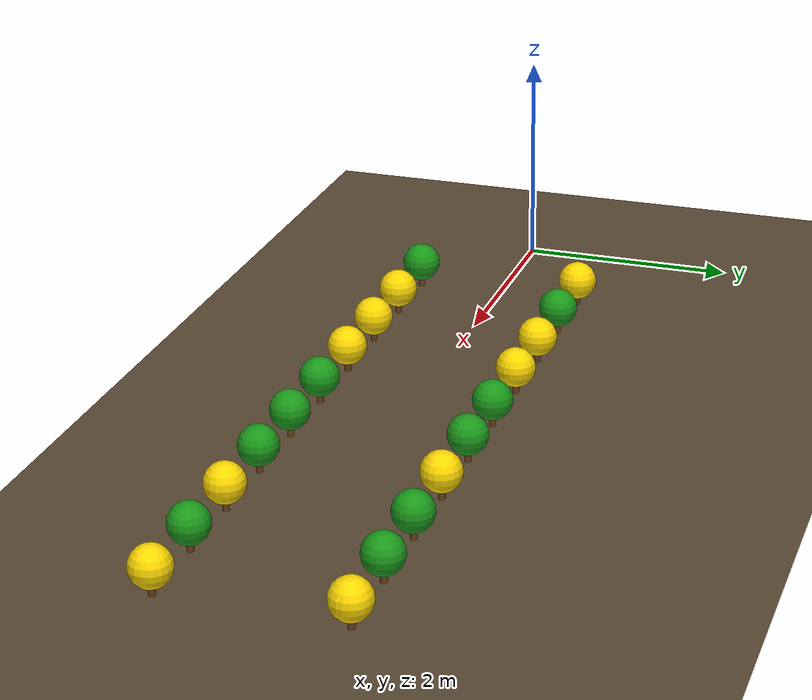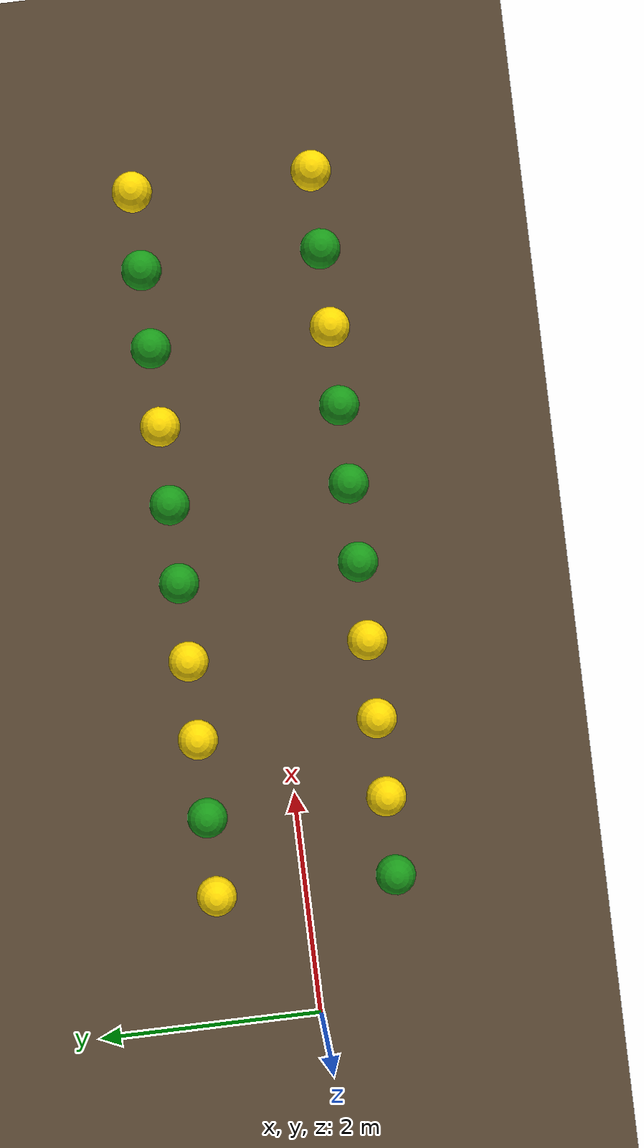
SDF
<?xml version="1.0"?>
<sdf version="1.6">
  <world name="default">
    <plugin filename="gz-sim-physics-system" name="gz::sim::systems::Physics"/>
    <plugin filename="gz-sim-user-commands-system" name="gz::sim::systems::UserCommands"/>
    <plugin filename="gz-sim-scene-broadcaster-system" name="gz::sim::systems::SceneBroadcaster"/>
    <plugin filename="gz-sim-sensors-system" name="gz::sim::systems::Sensors">
      <render_engine>ogre2</render_engine>
    </plugin>
    <plugin filename="gz-sim-imu-system" name="gz::sim::systems::Imu"/>

    <scene>
      <ambient>0.6 0.6 0.6 1</ambient>
      <background>0.5 0.7 0.9 1</background>
      <shadows>false</shadows>
    </scene>

    <physics type="ode">
      <real_time_update_rate>1000.0</real_time_update_rate>
      <max_step_size>0.001</max_step_size>
      <real_time_factor>1</real_time_factor>
    </physics>

    <light type="directional" name="sun">
      <cast_shadows>false</cast_shadows>
      <pose>0 0 10 0 0 0</pose>
      <diffuse>0.9 0.9 0.9 1</diffuse>
      <specular>0.2 0.2 0.2 1</specular>
      <direction>-0.5 0.1 -0.9</direction>
    </light>

    <model name="ground">
      <static>true</static>
      <link name="link">
        <collision name="col">
          <geometry><plane><normal>0 0 1</normal><size>40 40</size></plane></geometry>
        </collision>
        <visual name="vis">
          <geometry><plane><normal>0 0 1</normal><size>40 40</size></plane></geometry>
          <material><ambient>0.35 0.28 0.2 1</ambient><diffuse>0.35 0.28 0.2 1</diffuse></material>
        </visual>
      </link>
    </model>

    <model name="plant_01">
      <static>true</static>
      <pose>1.20 -0.80 0 0 0 0</pose>
      <link name="link">
        <collision name="stem_col">
          <pose>0 0 0.1 0 0 0</pose>
          <geometry><cylinder><radius>0.08</radius><length>0.2</length></cylinder></geometry>
        </collision>
        <visual name="stem">
          <pose>0 0 0.1 0 0 0</pose>
          <geometry><cylinder><radius>0.03</radius><length>0.2</length></cylinder></geometry>
          <material><ambient>0.4 0.25 0.1 1</ambient><diffuse>0.4 0.25 0.1 1</diffuse></material>
        </visual>
        <visual name="crown">
          <pose>0 0 0.25 0 0 0</pose>
          <geometry><sphere><radius>0.18</radius></sphere></geometry>
          <material><ambient>0.1 0.6 0.1 1</ambient><diffuse>0.1 0.6 0.1 1</diffuse></material>
        </visual>
      </link>
    </model>
    <model name="plant_02">
      <static>true</static>
      <pose>1.90 -0.80 0 0 0 0</pose>
      <link name="link">
        <collision name="stem_col">
          <pose>0 0 0.1 0 0 0</pose>
          <geometry><cylinder><radius>0.08</radius><length>0.2</length></cylinder></geometry>
        </collision>
        <visual name="stem">
          <pose>0 0 0.1 0 0 0</pose>
          <geometry><cylinder><radius>0.03</radius><length>0.2</length></cylinder></geometry>
          <material><ambient>0.4 0.25 0.1 1</ambient><diffuse>0.4 0.25 0.1 1</diffuse></material>
        </visual>
        <visual name="crown">
          <pose>0 0 0.25 0 0 0</pose>
          <geometry><sphere><radius>0.18</radius></sphere></geometry>
          <material><ambient>1.0 0.85 0.0 1</ambient><diffuse>1.0 0.85 0.0 1</diffuse></material>
        </visual>
      </link>
    </model>
    <model name="plant_03">
      <static>true</static>
      <pose>2.60 -0.80 0 0 0 0</pose>
      <link name="link">
        <collision name="stem_col">
          <pose>0 0 0.1 0 0 0</pose>
          <geometry><cylinder><radius>0.08</radius><length>0.2</length></cylinder></geometry>
        </collision>
        <visual name="stem">
          <pose>0 0 0.1 0 0 0</pose>
          <geometry><cylinder><radius>0.03</radius><length>0.2</length></cylinder></geometry>
          <material><ambient>0.4 0.25 0.1 1</ambient><diffuse>0.4 0.25 0.1 1</diffuse></material>
        </visual>
        <visual name="crown">
          <pose>0 0 0.25 0 0 0</pose>
          <geometry><sphere><radius>0.18</radius></sphere></geometry>
          <material><ambient>1.0 0.85 0.0 1</ambient><diffuse>1.0 0.85 0.0 1</diffuse></material>
        </visual>
      </link>
    </model>
    <model name="plant_04">
      <static>true</static>
      <pose>3.30 -0.80 0 0 0 0</pose>
      <link name="link">
        <collision name="stem_col">
          <pose>0 0 0.1 0 0 0</pose>
          <geometry><cylinder><radius>0.08</radius><length>0.2</length></cylinder></geometry>
        </collision>
        <visual name="stem">
          <pose>0 0 0.1 0 0 0</pose>
          <geometry><cylinder><radius>0.03</radius><length>0.2</length></cylinder></geometry>
          <material><ambient>0.4 0.25 0.1 1</ambient><diffuse>0.4 0.25 0.1 1</diffuse></material>
        </visual>
        <visual name="crown">
          <pose>0 0 0.25 0 0 0</pose>
          <geometry><sphere><radius>0.18</radius></sphere></geometry>
          <material><ambient>1.0 0.85 0.0 1</ambient><diffuse>1.0 0.85 0.0 1</diffuse></material>
        </visual>
      </link>
    </model>
    <model name="plant_05">
      <static>true</static>
      <pose>4.00 -0.80 0 0 0 0</pose>
      <link name="link">
        <collision name="stem_col">
          <pose>0 0 0.1 0 0 0</pose>
          <geometry><cylinder><radius>0.08</radius><length>0.2</length></cylinder></geometry>
        </collision>
        <visual name="stem">
          <pose>0 0 0.1 0 0 0</pose>
          <geometry><cylinder><radius>0.03</radius><length>0.2</length></cylinder></geometry>
          <material><ambient>0.4 0.25 0.1 1</ambient><diffuse>0.4 0.25 0.1 1</diffuse></material>
        </visual>
        <visual name="crown">
          <pose>0 0 0.25 0 0 0</pose>
          <geometry><sphere><radius>0.18</radius></sphere></geometry>
          <material><ambient>0.1 0.6 0.1 1</ambient><diffuse>0.1 0.6 0.1 1</diffuse></material>
        </visual>
      </link>
    </model>
    <model name="plant_06">
      <static>true</static>
      <pose>4.70 -0.80 0 0 0 0</pose>
      <link name="link">
        <collision name="stem_col">
          <pose>0 0 0.1 0 0 0</pose>
          <geometry><cylinder><radius>0.08</radius><length>0.2</length></cylinder></geometry>
        </collision>
        <visual name="stem">
          <pose>0 0 0.1 0 0 0</pose>
          <geometry><cylinder><radius>0.03</radius><length>0.2</length></cylinder></geometry>
          <material><ambient>0.4 0.25 0.1 1</ambient><diffuse>0.4 0.25 0.1 1</diffuse></material>
        </visual>
        <visual name="crown">
          <pose>0 0 0.25 0 0 0</pose>
          <geometry><sphere><radius>0.18</radius></sphere></geometry>
          <material><ambient>0.1 0.6 0.1 1</ambient><diffuse>0.1 0.6 0.1 1</diffuse></material>
        </visual>
      </link>
    </model>
    <model name="plant_07">
      <static>true</static>
      <pose>5.40 -0.80 0 0 0 0</pose>
      <link name="link">
        <collision name="stem_col">
          <pose>0 0 0.1 0 0 0</pose>
          <geometry><cylinder><radius>0.08</radius><length>0.2</length></cylinder></geometry>
        </collision>
        <visual name="stem">
          <pose>0 0 0.1 0 0 0</pose>
          <geometry><cylinder><radius>0.03</radius><length>0.2</length></cylinder></geometry>
          <material><ambient>0.4 0.25 0.1 1</ambient><diffuse>0.4 0.25 0.1 1</diffuse></material>
        </visual>
        <visual name="crown">
          <pose>0 0 0.25 0 0 0</pose>
          <geometry><sphere><radius>0.18</radius></sphere></geometry>
          <material><ambient>0.1 0.6 0.1 1</ambient><diffuse>0.1 0.6 0.1 1</diffuse></material>
        </visual>
      </link>
    </model>
    <model name="plant_08">
      <static>true</static>
      <pose>6.10 -0.80 0 0 0 0</pose>
      <link name="link">
        <collision name="stem_col">
          <pose>0 0 0.1 0 0 0</pose>
          <geometry><cylinder><radius>0.08</radius><length>0.2</length></cylinder></geometry>
        </collision>
        <visual name="stem">
          <pose>0 0 0.1 0 0 0</pose>
          <geometry><cylinder><radius>0.03</radius><length>0.2</length></cylinder></geometry>
          <material><ambient>0.4 0.25 0.1 1</ambient><diffuse>0.4 0.25 0.1 1</diffuse></material>
        </visual>
        <visual name="crown">
          <pose>0 0 0.25 0 0 0</pose>
          <geometry><sphere><radius>0.18</radius></sphere></geometry>
          <material><ambient>1.0 0.85 0.0 1</ambient><diffuse>1.0 0.85 0.0 1</diffuse></material>
        </visual>
      </link>
    </model>
    <model name="plant_09">
      <static>true</static>
      <pose>6.80 -0.80 0 0 0 0</pose>
      <link name="link">
        <collision name="stem_col">
          <pose>0 0 0.1 0 0 0</pose>
          <geometry><cylinder><radius>0.08</radius><length>0.2</length></cylinder></geometry>
        </collision>
        <visual name="stem">
          <pose>0 0 0.1 0 0 0</pose>
          <geometry><cylinder><radius>0.03</radius><length>0.2</length></cylinder></geometry>
          <material><ambient>0.4 0.25 0.1 1</ambient><diffuse>0.4 0.25 0.1 1</diffuse></material>
        </visual>
        <visual name="crown">
          <pose>0 0 0.25 0 0 0</pose>
          <geometry><sphere><radius>0.18</radius></sphere></geometry>
          <material><ambient>0.1 0.6 0.1 1</ambient><diffuse>0.1 0.6 0.1 1</diffuse></material>
        </visual>
      </link>
    </model>
    <model name="plant_10">
      <static>true</static>
      <pose>7.50 -0.80 0 0 0 0</pose>
      <link name="link">
        <collision name="stem_col">
          <pose>0 0 0.1 0 0 0</pose>
          <geometry><cylinder><radius>0.08</radius><length>0.2</length></cylinder></geometry>
        </collision>
        <visual name="stem">
          <pose>0 0 0.1 0 0 0</pose>
          <geometry><cylinder><radius>0.03</radius><length>0.2</length></cylinder></geometry>
          <material><ambient>0.4 0.25 0.1 1</ambient><diffuse>0.4 0.25 0.1 1</diffuse></material>
        </visual>
        <visual name="crown">
          <pose>0 0 0.25 0 0 0</pose>
          <geometry><sphere><radius>0.18</radius></sphere></geometry>
          <material><ambient>1.0 0.85 0.0 1</ambient><diffuse>1.0 0.85 0.0 1</diffuse></material>
        </visual>
      </link>
    </model>
    <model name="plant_11">
      <static>true</static>
      <pose>1.20 0.80 0 0 0 0</pose>
      <link name="link">
        <collision name="stem_col">
          <pose>0 0 0.1 0 0 0</pose>
          <geometry><cylinder><radius>0.08</radius><length>0.2</length></cylinder></geometry>
        </collision>
        <visual name="stem">
          <pose>0 0 0.1 0 0 0</pose>
          <geometry><cylinder><radius>0.03</radius><length>0.2</length></cylinder></geometry>
          <material><ambient>0.4 0.25 0.1 1</ambient><diffuse>0.4 0.25 0.1 1</diffuse></material>
        </visual>
        <visual name="crown">
          <pose>0 0 0.25 0 0 0</pose>
          <geometry><sphere><radius>0.18</radius></sphere></geometry>
          <material><ambient>1.0 0.85 0.0 1</ambient><diffuse>1.0 0.85 0.0 1</diffuse></material>
        </visual>
      </link>
    </model>
    <model name="plant_12">
      <static>true</static>
      <pose>1.90 0.80 0 0 0 0</pose>
      <link name="link">
        <collision name="stem_col">
          <pose>0 0 0.1 0 0 0</pose>
          <geometry><cylinder><radius>0.08</radius><length>0.2</length></cylinder></geometry>
        </collision>
        <visual name="stem">
          <pose>0 0 0.1 0 0 0</pose>
          <geometry><cylinder><radius>0.03</radius><length>0.2</length></cylinder></geometry>
          <material><ambient>0.4 0.25 0.1 1</ambient><diffuse>0.4 0.25 0.1 1</diffuse></material>
        </visual>
        <visual name="crown">
          <pose>0 0 0.25 0 0 0</pose>
          <geometry><sphere><radius>0.18</radius></sphere></geometry>
          <material><ambient>0.1 0.6 0.1 1</ambient><diffuse>0.1 0.6 0.1 1</diffuse></material>
        </visual>
      </link>
    </model>
    <model name="plant_13">
      <static>true</static>
      <pose>2.60 0.80 0 0 0 0</pose>
      <link name="link">
        <collision name="stem_col">
          <pose>0 0 0.1 0 0 0</pose>
          <geometry><cylinder><radius>0.08</radius><length>0.2</length></cylinder></geometry>
        </collision>
        <visual name="stem">
          <pose>0 0 0.1 0 0 0</pose>
          <geometry><cylinder><radius>0.03</radius><length>0.2</length></cylinder></geometry>
          <material><ambient>0.4 0.25 0.1 1</ambient><diffuse>0.4 0.25 0.1 1</diffuse></material>
        </visual>
        <visual name="crown">
          <pose>0 0 0.25 0 0 0</pose>
          <geometry><sphere><radius>0.18</radius></sphere></geometry>
          <material><ambient>1.0 0.85 0.0 1</ambient><diffuse>1.0 0.85 0.0 1</diffuse></material>
        </visual>
      </link>
    </model>
    <model name="plant_14">
      <static>true</static>
      <pose>3.30 0.80 0 0 0 0</pose>
      <link name="link">
        <collision name="stem_col">
          <pose>0 0 0.1 0 0 0</pose>
          <geometry><cylinder><radius>0.08</radius><length>0.2</length></cylinder></geometry>
        </collision>
        <visual name="stem">
          <pose>0 0 0.1 0 0 0</pose>
          <geometry><cylinder><radius>0.03</radius><length>0.2</length></cylinder></geometry>
          <material><ambient>0.4 0.25 0.1 1</ambient><diffuse>0.4 0.25 0.1 1</diffuse></material>
        </visual>
        <visual name="crown">
          <pose>0 0 0.25 0 0 0</pose>
          <geometry><sphere><radius>0.18</radius></sphere></geometry>
          <material><ambient>1.0 0.85 0.0 1</ambient><diffuse>1.0 0.85 0.0 1</diffuse></material>
        </visual>
      </link>
    </model>
    <model name="plant_15">
      <static>true</static>
      <pose>4.00 0.80 0 0 0 0</pose>
      <link name="link">
        <collision name="stem_col">
          <pose>0 0 0.1 0 0 0</pose>
          <geometry><cylinder><radius>0.08</radius><length>0.2</length></cylinder></geometry>
        </collision>
        <visual name="stem">
          <pose>0 0 0.1 0 0 0</pose>
          <geometry><cylinder><radius>0.03</radius><length>0.2</length></cylinder></geometry>
          <material><ambient>0.4 0.25 0.1 1</ambient><diffuse>0.4 0.25 0.1 1</diffuse></material>
        </visual>
        <visual name="crown">
          <pose>0 0 0.25 0 0 0</pose>
          <geometry><sphere><radius>0.18</radius></sphere></geometry>
          <material><ambient>0.1 0.6 0.1 1</ambient><diffuse>0.1 0.6 0.1 1</diffuse></material>
        </visual>
      </link>
    </model>
    <model name="plant_16">
      <static>true</static>
      <pose>4.70 0.80 0 0 0 0</pose>
      <link name="link">
        <collision name="stem_col">
          <pose>0 0 0.1 0 0 0</pose>
          <geometry><cylinder><radius>0.08</radius><length>0.2</length></cylinder></geometry>
        </collision>
        <visual name="stem">
          <pose>0 0 0.1 0 0 0</pose>
          <geometry><cylinder><radius>0.03</radius><length>0.2</length></cylinder></geometry>
          <material><ambient>0.4 0.25 0.1 1</ambient><diffuse>0.4 0.25 0.1 1</diffuse></material>
        </visual>
        <visual name="crown">
          <pose>0 0 0.25 0 0 0</pose>
          <geometry><sphere><radius>0.18</radius></sphere></geometry>
          <material><ambient>0.1 0.6 0.1 1</ambient><diffuse>0.1 0.6 0.1 1</diffuse></material>
        </visual>
      </link>
    </model>
    <model name="plant_17">
      <static>true</static>
      <pose>5.40 0.80 0 0 0 0</pose>
      <link name="link">
        <collision name="stem_col">
          <pose>0 0 0.1 0 0 0</pose>
          <geometry><cylinder><radius>0.08</radius><length>0.2</length></cylinder></geometry>
        </collision>
        <visual name="stem">
          <pose>0 0 0.1 0 0 0</pose>
          <geometry><cylinder><radius>0.03</radius><length>0.2</length></cylinder></geometry>
          <material><ambient>0.4 0.25 0.1 1</ambient><diffuse>0.4 0.25 0.1 1</diffuse></material>
        </visual>
        <visual name="crown">
          <pose>0 0 0.25 0 0 0</pose>
          <geometry><sphere><radius>0.18</radius></sphere></geometry>
          <material><ambient>1.0 0.85 0.0 1</ambient><diffuse>1.0 0.85 0.0 1</diffuse></material>
        </visual>
      </link>
    </model>
    <model name="plant_18">
      <static>true</static>
      <pose>6.10 0.80 0 0 0 0</pose>
      <link name="link">
        <collision name="stem_col">
          <pose>0 0 0.1 0 0 0</pose>
          <geometry><cylinder><radius>0.08</radius><length>0.2</length></cylinder></geometry>
        </collision>
        <visual name="stem">
          <pose>0 0 0.1 0 0 0</pose>
          <geometry><cylinder><radius>0.03</radius><length>0.2</length></cylinder></geometry>
          <material><ambient>0.4 0.25 0.1 1</ambient><diffuse>0.4 0.25 0.1 1</diffuse></material>
        </visual>
        <visual name="crown">
          <pose>0 0 0.25 0 0 0</pose>
          <geometry><sphere><radius>0.18</radius></sphere></geometry>
          <material><ambient>0.1 0.6 0.1 1</ambient><diffuse>0.1 0.6 0.1 1</diffuse></material>
        </visual>
      </link>
    </model>
    <model name="plant_19">
      <static>true</static>
      <pose>6.80 0.80 0 0 0 0</pose>
      <link name="link">
        <collision name="stem_col">
          <pose>0 0 0.1 0 0 0</pose>
          <geometry><cylinder><radius>0.08</radius><length>0.2</length></cylinder></geometry>
        </collision>
        <visual name="stem">
          <pose>0 0 0.1 0 0 0</pose>
          <geometry><cylinder><radius>0.03</radius><length>0.2</length></cylinder></geometry>
          <material><ambient>0.4 0.25 0.1 1</ambient><diffuse>0.4 0.25 0.1 1</diffuse></material>
        </visual>
        <visual name="crown">
          <pose>0 0 0.25 0 0 0</pose>
          <geometry><sphere><radius>0.18</radius></sphere></geometry>
          <material><ambient>0.1 0.6 0.1 1</ambient><diffuse>0.1 0.6 0.1 1</diffuse></material>
        </visual>
      </link>
    </model>
    <model name="plant_20">
      <static>true</static>
      <pose>7.50 0.80 0 0 0 0</pose>
      <link name="link">
        <collision name="stem_col">
          <pose>0 0 0.1 0 0 0</pose>
          <geometry><cylinder><radius>0.08</radius><length>0.2</length></cylinder></geometry>
        </collision>
        <visual name="stem">
          <pose>0 0 0.1 0 0 0</pose>
          <geometry><cylinder><radius>0.03</radius><length>0.2</length></cylinder></geometry>
          <material><ambient>0.4 0.25 0.1 1</ambient><diffuse>0.4 0.25 0.1 1</diffuse></material>
        </visual>
        <visual name="crown">
          <pose>0 0 0.25 0 0 0</pose>
          <geometry><sphere><radius>0.18</radius></sphere></geometry>
          <material><ambient>1.0 0.85 0.0 1</ambient><diffuse>1.0 0.85 0.0 1</diffuse></material>
        </visual>
      </link>
    </model>
  </world>
</sdf>
